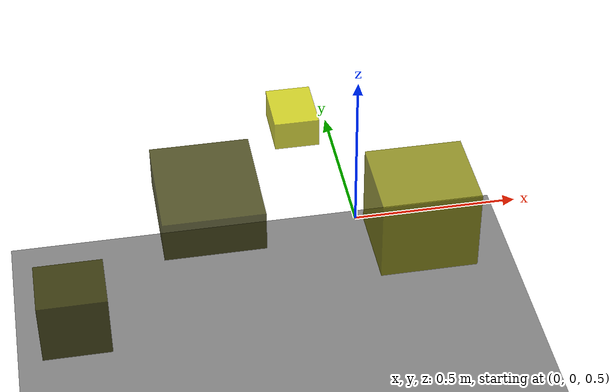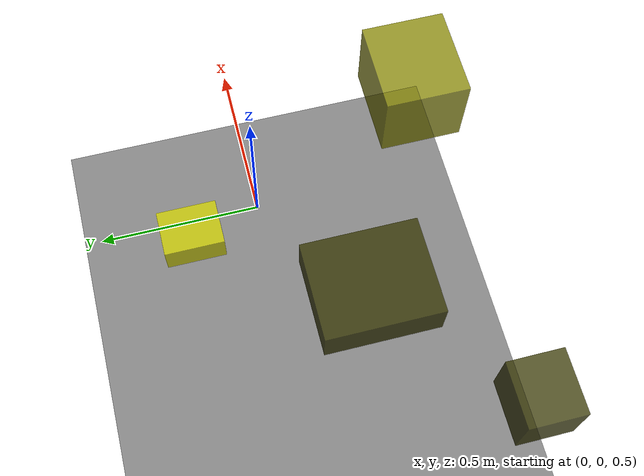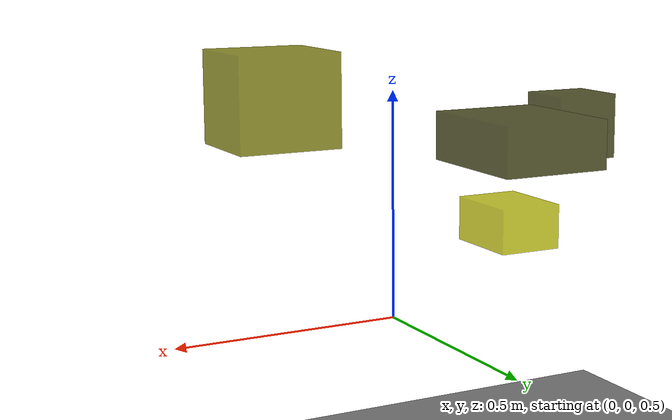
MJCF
<?xml version="1.0"?>
<mujoco model="obstacle_scene">
  <compiler angle="radian" coordinate="local"/>
  <option timestep="0.001" gravity="0 0 -9.81"/>

  <asset>
    <material name="obstacle_mat" rgba="0.8 0.8 0.0 0.8"/>
    <material name="ground_mat" rgba="0.5 0.5 0.5 1"/>
  </asset>

  <worldbody>
    <!-- Ground plane -->
    <geom name="ground" type="plane" size="3 3 0.1" material="ground_mat"/>

    <!-- Obstacles -->
    <body name="obstacle_0" pos="-0.866788 -0.573552 0.801581">
      <geom name="obs_0" type="box" size="0.090705 0.081407 0.089256" rgba="0.2 0.2 0.0 0.8"/>
    </body>
    <body name="obstacle_1" pos="0.071498 -0.490071 0.935788">
      <geom name="obs_1" type="box" size="0.130122 0.117923 0.116286" rgba="0.5 0.5 0.0 0.8"/>
    </body>
    <body name="obstacle_2" pos="-0.154509 0.220665 0.738926">
      <geom name="obs_2" type="box" size="0.066713 0.086610 0.045923" rgba="0.8 0.8 0.0 0.8"/>
    </body>
    <body name="obstacle_3" pos="-0.469102 -0.223876 0.831246">
      <geom name="obs_3" type="box" size="0.140267 0.166948 0.061368" rgba="0.2 0.2 0.0 0.8"/>
    </body>
  </worldbody>
</mujoco>
